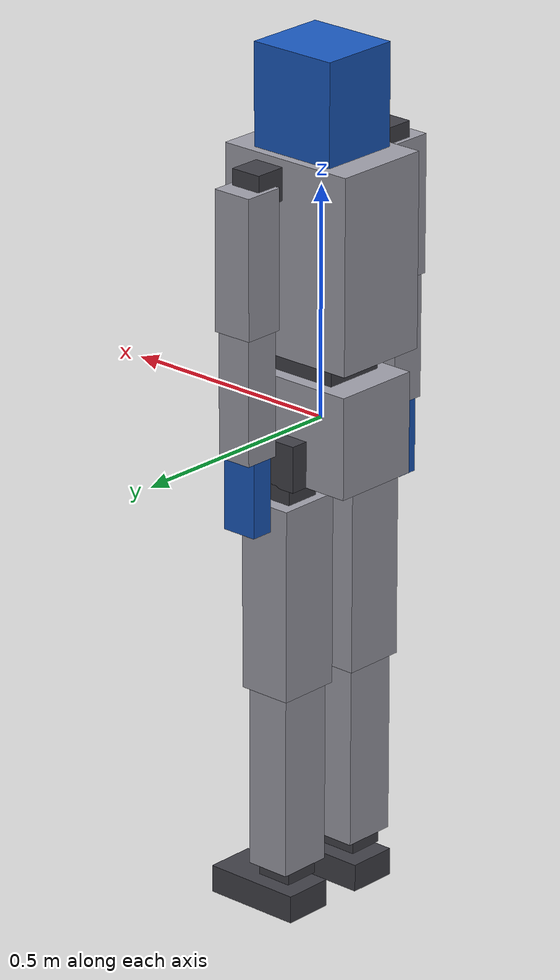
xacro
<?xml version="1.0"?>
<robot name="humanoid" xmlns:xacro="http://www.ros.org/wiki/xacro">

  <!-- ===================== Propriétés / properties ===================== -->
  <!-- Jambes / legs -->
  <xacro:property name="thigh_len" value="0.42"/>
  <xacro:property name="shank_len" value="0.40"/>
  <xacro:property name="ankle_h" value="0.075"/>
  <xacro:property name="foot_fwd" value="0.05"/>
  <xacro:property name="hip_offset_y" value="0.10"/>
  <xacro:property name="hip_offset_z" value="-0.06"/>
  <!-- Bras / arms -->
  <xacro:property name="arm_upper_len" value="0.30"/>
  <xacro:property name="arm_fore_len" value="0.27"/>
  <xacro:property name="hand_len" value="0.16"/>
  <xacro:property name="shoulder_offset_y" value="0.19"/>
  <xacro:property name="shoulder_offset_z" value="0.39"/>  <!-- repère torse = bas du torse / torso frame at bottom -->
  <!-- Torse / corps / head -->
  <xacro:property name="base_mass" value="6.0"/>
  <xacro:property name="waist_len" value="0.06"/>
  <xacro:property name="torso_mass" value="9.0"/>

  <!-- ===================== Matériaux / materials ===================== -->
  <material name="dronecad_grey"><color rgba="0.62 0.62 0.66 1.0"/></material>
  <material name="dronecad_dark"><color rgba="0.25 0.25 0.28 1.0"/></material>
  <material name="dronecad_blue"><color rgba="0.10 0.35 0.75 1.0"/></material>

  <!-- ===================== Macro inertie d'une boîte / box inertia ===================== -->
  <xacro:macro name="box_inertia" params="m x y z">
    <inertia ixx="${m*(y*y+z*z)/12.0}" ixy="0.0" ixz="0.0"
             iyy="${m*(x*x+z*z)/12.0}" iyz="0.0"
             izz="${m*(x*x+y*y)/12.0}"/>
  </xacro:macro>

  <xacro:include filename="humanoid_leg.xacro"/>
  <xacro:include filename="humanoid_arm.xacro"/>

  <!-- ===================== Base (bassin / pelvis) ===================== -->
  <link name="base_link">
    <visual><geometry><box size="0.30 0.20 0.22"/></geometry><material name="dronecad_grey"/></visual>
    <collision><geometry><box size="0.30 0.20 0.22"/></geometry></collision>
    <inertial><mass value="${base_mass}"/><origin xyz="0 0 0"/>
      <xacro:box_inertia m="${base_mass}" x="0.30" y="0.20" z="0.22"/></inertial>
  </link>

  <!-- ===================== Torse / torso ===================== -->
  <joint name="torso_yaw_joint" type="revolute">
    <parent link="base_link"/><child link="waist_link"/>
    <origin xyz="0 0 0.10" rpy="0 0 0"/>
    <axis xyz="0 0 1"/>
    <limit lower="-1.0" upper="1.0" effort="60" velocity="3.0"/>
  </joint>
  <link name="waist_link">
    <visual><geometry><box size="0.18 0.14 0.08"/></geometry><material name="dronecad_dark"/></visual>
    <collision><geometry><box size="0.18 0.14 0.08"/></geometry></collision>
    <inertial><mass value="1.2"/><origin xyz="0 0 0"/><xacro:box_inertia m="1.2" x="0.18" y="0.14" z="0.08"/></inertial>
  </link>

  <joint name="torso_pitch_joint" type="revolute">
    <parent link="waist_link"/><child link="torso_link"/>
    <origin xyz="0 0 ${waist_len}" rpy="0 0 0"/>
    <axis xyz="0 1 0"/>
    <limit lower="-0.5" upper="0.5" effort="80" velocity="3.0"/>
  </joint>
  <!-- Repère du torse à sa base ; le centre visuel est à +0.21 -->
  <link name="torso_link">
    <visual><origin xyz="0 0 0.21"/><geometry><box size="0.32 0.22 0.42"/></geometry><material name="dronecad_grey"/></visual>
    <collision><origin xyz="0 0 0.21"/><geometry><box size="0.32 0.22 0.42"/></geometry></collision>
    <inertial><mass value="${torso_mass}"/><origin xyz="0 0 0.21"/>
      <xacro:box_inertia m="${torso_mass}" x="0.32" y="0.22" z="0.42"/></inertial>
  </link>

  <!-- ===================== Nuque + tête / neck + head ===================== -->
  <joint name="neck_yaw_joint" type="revolute">
    <parent link="torso_link"/><child link="neck_link"/>
    <origin xyz="0 0 0.37" rpy="0 0 0"/>
    <axis xyz="0 0 1"/>
    <limit lower="-1.2" upper="1.2" effort="20" velocity="5.0"/>
  </joint>
  <link name="neck_link">
    <visual><geometry><box size="0.08 0.08 0.06"/></geometry><material name="dronecad_dark"/></visual>
    <collision><geometry><box size="0.08 0.08 0.06"/></geometry></collision>
    <inertial><mass value="0.3"/><origin xyz="0 0 0"/><xacro:box_inertia m="0.3" x="0.08" y="0.08" z="0.06"/></inertial>
  </link>

  <joint name="neck_pitch_joint" type="revolute">
    <parent link="neck_link"/><child link="head_link"/>
    <origin xyz="0 0 0.05" rpy="0 0 0"/>
    <axis xyz="0 1 0"/>
    <limit lower="-0.6" upper="0.6" effort="20" velocity="5.0"/>
  </joint>
  <link name="head_link">
    <visual><origin xyz="0 0 0.11"/><geometry><box size="0.20 0.18 0.22"/></geometry><material name="dronecad_blue"/></visual>
    <collision><origin xyz="0 0 0.11"/><geometry><box size="0.20 0.18 0.22"/></geometry></collision>
    <inertial><mass value="1.6"/><origin xyz="0 0 0.11"/>
      <xacro:box_inertia m="1.6" x="0.20" y="0.18" z="0.22"/></inertial>
  </link>

  <!-- ===================== Membres / limbs ===================== -->
  <xacro:humanoid_leg side="l"/>
  <xacro:humanoid_leg side="r"/>
  <xacro:humanoid_arm side="l"/>
  <xacro:humanoid_arm side="r"/>

  <!-- ===================== Capteurs / sensors (tête) ===================== -->
  <xacro:arg name="enable_camera" default="true"/>
  <gazebo reference="head_link">
    <xacro:if value="$(arg enable_camera)">
      <sensor name="head_rgbd" type="rgbd_camera">
        <topic>/camera</topic>
        <pose>0.11 0 0.11 0 0 0</pose>
        <always_on>true</always_on>
        <update_rate>30</update_rate>
        <camera>
          <horizontal_fov>1.204</horizontal_fov>
          <image><width>640</width><height>480</height><format>R8G8B8</format></image>
          <clip><near>0.05</near><far>20.0</far></clip>
        </camera>
      </sensor>
    </xacro:if>
    <sensor name="head_imu" type="imu">
      <topic>/imu</topic>
      <always_on>true</always_on>
      <update_rate>200</update_rate>
    </sensor>
  </gazebo>

  <!-- ===================== ros2_control (gz_ros2_control) ===================== -->
  <ros2_control name="humanoid_gz" type="system">
    <hardware><plugin>gz_ros2_control/GazeboSimSystem</plugin></hardware>

    <joint name="torso_yaw_joint">
      <command_interface name="position"/><command_interface name="effort"/>
      <state_interface name="position"/><state_interface name="velocity"/><state_interface name="effort"/>
    </joint>
    <joint name="torso_pitch_joint">
      <command_interface name="position"/><command_interface name="effort"/>
      <state_interface name="position"/><state_interface name="velocity"/><state_interface name="effort"/>
    </joint>
    <joint name="neck_yaw_joint">
      <command_interface name="position"/><command_interface name="effort"/>
      <state_interface name="position"/><state_interface name="velocity"/><state_interface name="effort"/>
    </joint>
    <joint name="neck_pitch_joint">
      <command_interface name="position"/><command_interface name="effort"/>
      <state_interface name="position"/><state_interface name="velocity"/><state_interface name="effort"/>
    </joint>

    <joint name="l_shoulder_pitch_joint">
      <command_interface name="position"/><command_interface name="effort"/>
      <state_interface name="position"/><state_interface name="velocity"/><state_interface name="effort"/>
    </joint>
    <joint name="l_shoulder_roll_joint">
      <command_interface name="position"/><command_interface name="effort"/>
      <state_interface name="position"/><state_interface name="velocity"/><state_interface name="effort"/>
    </joint>
    <joint name="l_shoulder_yaw_joint">
      <command_interface name="position"/><command_interface name="effort"/>
      <state_interface name="position"/><state_interface name="velocity"/><state_interface name="effort"/>
    </joint>
    <joint name="l_elbow_pitch_joint">
      <command_interface name="position"/><command_interface name="effort"/>
      <state_interface name="position"/><state_interface name="velocity"/><state_interface name="effort"/>
    </joint>
    <joint name="l_wrist_yaw_joint">
      <command_interface name="position"/><command_interface name="effort"/>
      <state_interface name="position"/><state_interface name="velocity"/><state_interface name="effort"/>
    </joint>
    <joint name="l_wrist_pitch_joint">
      <command_interface name="position"/><command_interface name="effort"/>
      <state_interface name="position"/><state_interface name="velocity"/><state_interface name="effort"/>
    </joint>

    <joint name="r_shoulder_pitch_joint">
      <command_interface name="position"/><command_interface name="effort"/>
      <state_interface name="position"/><state_interface name="velocity"/><state_interface name="effort"/>
    </joint>
    <joint name="r_shoulder_roll_joint">
      <command_interface name="position"/><command_interface name="effort"/>
      <state_interface name="position"/><state_interface name="velocity"/><state_interface name="effort"/>
    </joint>
    <joint name="r_shoulder_yaw_joint">
      <command_interface name="position"/><command_interface name="effort"/>
      <state_interface name="position"/><state_interface name="velocity"/><state_interface name="effort"/>
    </joint>
    <joint name="r_elbow_pitch_joint">
      <command_interface name="position"/><command_interface name="effort"/>
      <state_interface name="position"/><state_interface name="velocity"/><state_interface name="effort"/>
    </joint>
    <joint name="r_wrist_yaw_joint">
      <command_interface name="position"/><command_interface name="effort"/>
      <state_interface name="position"/><state_interface name="velocity"/><state_interface name="effort"/>
    </joint>
    <joint name="r_wrist_pitch_joint">
      <command_interface name="position"/><command_interface name="effort"/>
      <state_interface name="position"/><state_interface name="velocity"/><state_interface name="effort"/>
    </joint>

    <joint name="l_hip_yaw_joint">
      <command_interface name="position"/><command_interface name="effort"/>
      <state_interface name="position"/><state_interface name="velocity"/><state_interface name="effort"/>
    </joint>
    <joint name="l_hip_roll_joint">
      <command_interface name="position"/><command_interface name="effort"/>
      <state_interface name="position"/><state_interface name="velocity"/><state_interface name="effort"/>
    </joint>
    <joint name="l_hip_pitch_joint">
      <command_interface name="position"/><command_interface name="effort"/>
      <state_interface name="position"/><state_interface name="velocity"/><state_interface name="effort"/>
    </joint>
    <joint name="l_knee_pitch_joint">
      <command_interface name="position"/><command_interface name="effort"/>
      <state_interface name="position"/><state_interface name="velocity"/><state_interface name="effort"/>
    </joint>
    <joint name="l_ankle_pitch_joint">
      <command_interface name="position"/><command_interface name="effort"/>
      <state_interface name="position"/><state_interface name="velocity"/><state_interface name="effort"/>
    </joint>
    <joint name="l_ankle_roll_joint">
      <command_interface name="position"/><command_interface name="effort"/>
      <state_interface name="position"/><state_interface name="velocity"/><state_interface name="effort"/>
    </joint>

    <joint name="r_hip_yaw_joint">
      <command_interface name="position"/><command_interface name="effort"/>
      <state_interface name="position"/><state_interface name="velocity"/><state_interface name="effort"/>
    </joint>
    <joint name="r_hip_roll_joint">
      <command_interface name="position"/><command_interface name="effort"/>
      <state_interface name="position"/><state_interface name="velocity"/><state_interface name="effort"/>
    </joint>
    <joint name="r_hip_pitch_joint">
      <command_interface name="position"/><command_interface name="effort"/>
      <state_interface name="position"/><state_interface name="velocity"/><state_interface name="effort"/>
    </joint>
    <joint name="r_knee_pitch_joint">
      <command_interface name="position"/><command_interface name="effort"/>
      <state_interface name="position"/><state_interface name="velocity"/><state_interface name="effort"/>
    </joint>
    <joint name="r_ankle_pitch_joint">
      <command_interface name="position"/><command_interface name="effort"/>
      <state_interface name="position"/><state_interface name="velocity"/><state_interface name="effort"/>
    </joint>
    <joint name="r_ankle_roll_joint">
      <command_interface name="position"/><command_interface name="effort"/>
      <state_interface name="position"/><state_interface name="velocity"/><state_interface name="effort"/>
    </joint>
  </ros2_control>

  <xacro:arg name="controllers_yaml" default=""/>
  <gazebo>
    <plugin filename="gz_ros2_control-system" name="gz_ros2_control::GazeboSimROS2ControlPlugin">
      <parameters>$(arg controllers_yaml)</parameters>
    </plugin>
  </gazebo>

  <gazebo>
    <plugin filename="gz-sim-pose-publisher-system" name="gz::sim::systems::PosePublisher">
      <publish_model_pose>true</publish_model_pose>
      <publish_link_pose>false</publish_link_pose>
      <publish_visual_pose>false</publish_visual_pose>
      <publish_collision_pose>false</publish_collision_pose>
      <publish_sensor_pose>false</publish_sensor_pose>
    </plugin>
  </gazebo>

</robot>

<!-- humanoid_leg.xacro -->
<robot xmlns:xacro="http://www.ros.org/wiki/xacro">

  <xacro:macro name="humanoid_leg" params="side">
    <xacro:property name="mirror" value="${1.0 if side == 'l' else -1.0}"/>

    <!-- Hanche — lacet / hip yaw -->
    <joint name="${side}_hip_yaw_joint" type="revolute">
      <parent link="base_link"/>
      <child link="${side}_hip_link"/>
      <origin xyz="0 ${mirror * hip_offset_y} ${hip_offset_z}" rpy="0 0 0"/>
      <axis xyz="0 0 ${mirror}"/>
      <limit lower="-0.6" upper="0.6" effort="120" velocity="4.0"/>
    </joint>
    <link name="${side}_hip_link">
      <visual><geometry><box size="0.10 0.08 0.10"/></geometry><material name="dronecad_dark"/></visual>
      <collision><geometry><box size="0.10 0.08 0.10"/></geometry></collision>
      <inertial><mass value="0.8"/><origin xyz="0 0 0"/><xacro:box_inertia m="0.8" x="0.10" y="0.08" z="0.10"/></inertial>
    </link>

    <!-- Hanche — roulis / hip roll -->
    <joint name="${side}_hip_roll_joint" type="revolute">
      <parent link="${side}_hip_link"/>
      <child link="${side}_hip_roll_link"/>
      <origin xyz="0 0 -0.05" rpy="0 0 0"/>
      <axis xyz="${mirror} 0 0"/>
      <limit lower="-0.6" upper="0.6" effort="120" velocity="4.0"/>
    </joint>
    <link name="${side}_hip_roll_link">
      <visual><geometry><box size="0.08 0.08 0.08"/></geometry><material name="dronecad_dark"/></visual>
      <collision><geometry><box size="0.08 0.08 0.08"/></geometry></collision>
      <inertial><mass value="0.5"/><origin xyz="0 0 0"/><xacro:box_inertia m="0.5" x="0.08" y="0.08" z="0.08"/></inertial>
    </link>

    <!-- Hanche — tangage / hip pitch -->
    <joint name="${side}_hip_pitch_joint" type="revolute">
      <parent link="${side}_hip_roll_link"/>
      <child link="${side}_thigh_link"/>
      <origin xyz="0 0 -0.03" rpy="0 0 0"/>
      <axis xyz="0 1 0"/>
      <limit lower="-1.6" upper="1.0" effort="150" velocity="5.0"/>
    </joint>
    <link name="${side}_thigh_link">
      <visual><origin xyz="0 0 ${-thigh_len/2}"/><geometry><box size="0.12 0.14 ${thigh_len}"/></geometry><material name="dronecad_grey"/></visual>
      <collision><origin xyz="0 0 ${-thigh_len/2}"/><geometry><box size="0.12 0.14 ${thigh_len}"/></geometry></collision>
      <inertial><mass value="4.5"/><origin xyz="0 0 ${-thigh_len/2}"/><xacro:box_inertia m="4.5" x="0.12" y="0.14" z="${thigh_len}"/></inertial>
    </link>

    <!-- Genou / knee pitch (flexion négative) -->
    <joint name="${side}_knee_pitch_joint" type="revolute">
      <parent link="${side}_thigh_link"/>
      <child link="${side}_shank_link"/>
      <origin xyz="0 0 ${-thigh_len}" rpy="0 0 0"/>
      <axis xyz="0 1 0"/>
      <limit lower="-2.4" upper="0.10" effort="150" velocity="5.0"/>
    </joint>
    <link name="${side}_shank_link">
      <visual><origin xyz="0 0 ${-shank_len/2}"/><geometry><box size="0.10 0.12 ${shank_len}"/></geometry><material name="dronecad_grey"/></visual>
      <collision><origin xyz="0 0 ${-shank_len/2}"/><geometry><box size="0.10 0.12 ${shank_len}"/></geometry></collision>
      <inertial><mass value="3.2"/><origin xyz="0 0 ${-shank_len/2}"/><xacro:box_inertia m="3.2" x="0.10" y="0.12" z="${shank_len}"/></inertial>
    </link>

    <!-- Cheville — tangage / ankle pitch -->
    <joint name="${side}_ankle_pitch_joint" type="revolute">
      <parent link="${side}_shank_link"/>
      <child link="${side}_ankle_link"/>
      <origin xyz="0 0 ${-shank_len}" rpy="0 0 0"/>
      <axis xyz="0 1 0"/>
      <limit lower="-0.7" upper="0.7" effort="80" velocity="4.0"/>
    </joint>
    <link name="${side}_ankle_link">
      <visual><geometry><box size="0.08 0.08 0.06"/></geometry><material name="dronecad_dark"/></visual>
      <collision><geometry><box size="0.08 0.08 0.06"/></geometry></collision>
      <inertial><mass value="0.4"/><origin xyz="0 0 0"/><xacro:box_inertia m="0.4" x="0.08" y="0.08" z="0.06"/></inertial>
    </link>

    <!-- Cheville — roulis / ankle roll -->
    <joint name="${side}_ankle_roll_joint" type="revolute">
      <parent link="${side}_ankle_link"/>
      <child link="${side}_foot_link"/>
      <origin xyz="0 0 -0.03" rpy="0 0 0"/>
      <axis xyz="${mirror} 0 0"/>
      <limit lower="-0.4" upper="0.4" effort="80" velocity="4.0"/>
    </joint>
    <link name="${side}_foot_link">
      <visual><origin xyz="${foot_fwd} 0 ${-(ankle_h - 0.03)}"/><geometry><box size="0.22 0.11 0.06"/></geometry><material name="dronecad_dark"/></visual>
      <collision name="${side}_foot_collision"><origin xyz="${foot_fwd} 0 ${-(ankle_h - 0.03)}"/><geometry><box size="0.22 0.11 0.06"/></geometry></collision>
      <inertial><mass value="0.9"/><origin xyz="${foot_fwd} 0 ${-(ankle_h - 0.03)}"/><xacro:box_inertia m="0.9" x="0.22" y="0.11" z="0.06"/></inertial>
    </link>

    <!-- Capteur de contact plantaire (Gazebo) / foot contact sensor (Gazebo) -->
    <gazebo reference="${side}_foot_link">
      <sensor name="${side}_foot_contact" type="contact">
        <always_on>true</always_on>
        <update_rate>50</update_rate>
        <contact>
          <collision>${side}_foot_collision</collision>
        </contact>
      </sensor>
    </gazebo>
  </xacro:macro>

</robot>

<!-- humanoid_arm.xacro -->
<robot xmlns:xacro="http://www.ros.org/wiki/xacro">

  <xacro:macro name="humanoid_arm" params="side">
    <xacro:property name="mirror" value="${1.0 if side == 'l' else -1.0}"/>

    <!-- Épaule — tangage / shoulder pitch -->
    <joint name="${side}_shoulder_pitch_joint" type="revolute">
      <parent link="torso_link"/>
      <child link="${side}_shoulder_link"/>
      <origin xyz="0 ${mirror * shoulder_offset_y} ${shoulder_offset_z}" rpy="0 0 0"/>
      <axis xyz="0 1 0"/>
      <limit lower="-2.6" upper="1.8" effort="60" velocity="6.0"/>
    </joint>
    <link name="${side}_shoulder_link">
      <visual><geometry><box size="0.07 0.07 0.07"/></geometry><material name="dronecad_dark"/></visual>
      <collision><geometry><box size="0.07 0.07 0.07"/></geometry></collision>
      <inertial><mass value="0.3"/><origin xyz="0 0 0"/><xacro:box_inertia m="0.3" x="0.07" y="0.07" z="0.07"/></inertial>
    </link>

    <!-- Épaule — roulis / shoulder roll -->
    <joint name="${side}_shoulder_roll_joint" type="revolute">
      <parent link="${side}_shoulder_link"/>
      <child link="${side}_upper_arm_link"/>
      <origin xyz="0 ${mirror * 0.03} 0" rpy="0 0 0"/>
      <axis xyz="${mirror} 0 0"/>
      <limit lower="-1.5" upper="1.5" effort="60" velocity="6.0"/>
    </joint>
    <link name="${side}_upper_arm_link">
      <visual><origin xyz="0 0 ${-arm_upper_len/2}"/><geometry><box size="0.09 0.09 ${arm_upper_len}"/></geometry><material name="dronecad_grey"/></visual>
      <collision><origin xyz="0 0 ${-arm_upper_len/2}"/><geometry><box size="0.09 0.09 ${arm_upper_len}"/></geometry></collision>
      <inertial><mass value="1.6"/><origin xyz="0 0 ${-arm_upper_len/2}"/><xacro:box_inertia m="1.6" x="0.09" y="0.09" z="${arm_upper_len}"/></inertial>
    </link>

    <!-- Épaule — lacet (torsion du bras) / shoulder yaw (arm twist) -->
    <joint name="${side}_shoulder_yaw_joint" type="revolute">
      <parent link="${side}_upper_arm_link"/>
      <child link="${side}_upper_arm_twist_link"/>
      <origin xyz="0 0 ${-arm_upper_len + 0.02}" rpy="0 0 0"/>
      <axis xyz="0 0 ${mirror}"/>
      <limit lower="-1.6" upper="1.6" effort="30" velocity="8.0"/>
    </joint>
    <link name="${side}_upper_arm_twist_link">
      <visual><geometry><box size="0.06 0.06 0.06"/></geometry><material name="dronecad_dark"/></visual>
      <collision><geometry><box size="0.06 0.06 0.06"/></geometry></collision>
      <inertial><mass value="0.25"/><origin xyz="0 0 0"/><xacro:box_inertia m="0.25" x="0.06" y="0.06" z="0.06"/></inertial>
    </link>

    <!-- Coude — tangage (flexion négative) / elbow pitch -->
    <joint name="${side}_elbow_pitch_joint" type="revolute">
      <parent link="${side}_upper_arm_twist_link"/>
      <child link="${side}_forearm_link"/>
      <origin xyz="0 0 -0.02" rpy="0 0 0"/>
      <axis xyz="0 1 0"/>
      <limit lower="-2.5" upper="0.05" effort="30" velocity="8.0"/>
    </joint>
    <link name="${side}_forearm_link">
      <visual><origin xyz="0 0 ${-arm_fore_len/2}"/><geometry><box size="0.08 0.08 ${arm_fore_len}"/></geometry><material name="dronecad_grey"/></visual>
      <collision><origin xyz="0 0 ${-arm_fore_len/2}"/><geometry><box size="0.08 0.08 ${arm_fore_len}"/></geometry></collision>
      <inertial><mass value="1.2"/><origin xyz="0 0 ${-arm_fore_len/2}"/><xacro:box_inertia m="1.2" x="0.08" y="0.08" z="${arm_fore_len}"/></inertial>
    </link>

    <!-- Poignet — lacet / wrist yaw -->
    <joint name="${side}_wrist_yaw_joint" type="revolute">
      <parent link="${side}_forearm_link"/>
      <child link="${side}_wrist_link"/>
      <origin xyz="0 0 ${-arm_fore_len + 0.02}" rpy="0 0 0"/>
      <axis xyz="0 0 ${mirror}"/>
      <limit lower="-1.0" upper="1.0" effort="15" velocity="8.0"/>
    </joint>
    <link name="${side}_wrist_link">
      <visual><geometry><box size="0.05 0.05 0.05"/></geometry><material name="dronecad_dark"/></visual>
      <collision><geometry><box size="0.05 0.05 0.05"/></geometry></collision>
      <inertial><mass value="0.15"/><origin xyz="0 0 0"/><xacro:box_inertia m="0.15" x="0.05" y="0.05" z="0.05"/></inertial>
    </link>

    <!-- Poignet — tangage / wrist pitch -->
    <joint name="${side}_wrist_pitch_joint" type="revolute">
      <parent link="${side}_wrist_link"/>
      <child link="${side}_hand_link"/>
      <origin xyz="0 0 -0.02" rpy="0 0 0"/>
      <axis xyz="0 1 0"/>
      <limit lower="-1.0" upper="1.0" effort="15" velocity="8.0"/>
    </joint>
    <link name="${side}_hand_link">
      <visual><origin xyz="0 0 ${-hand_len/2}"/><geometry><box size="0.08 0.05 ${hand_len}"/></geometry><material name="dronecad_blue"/></visual>
      <collision><origin xyz="0 0 ${-hand_len/2}"/><geometry><box size="0.08 0.05 ${hand_len}"/></geometry></collision>
      <inertial><mass value="0.4"/><origin xyz="0 0 ${-hand_len/2}"/><xacro:box_inertia m="0.4" x="0.08" y="0.05" z="${hand_len}"/></inertial>
    </link>
  </xacro:macro>

</robot>
